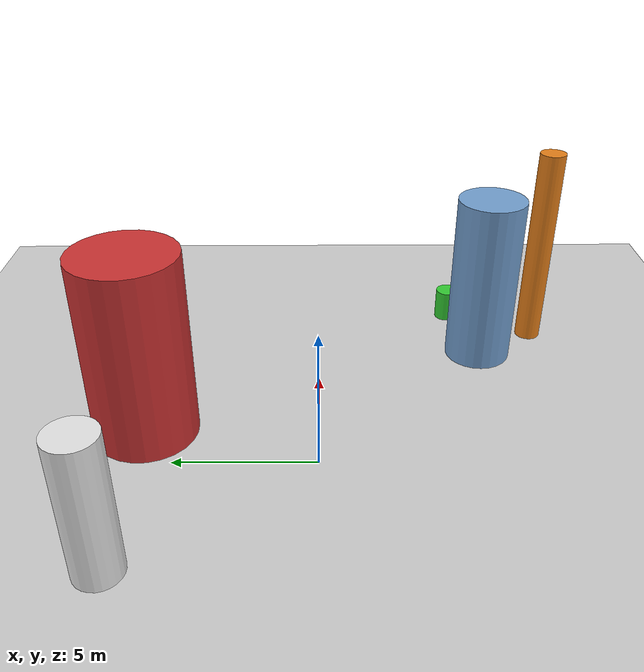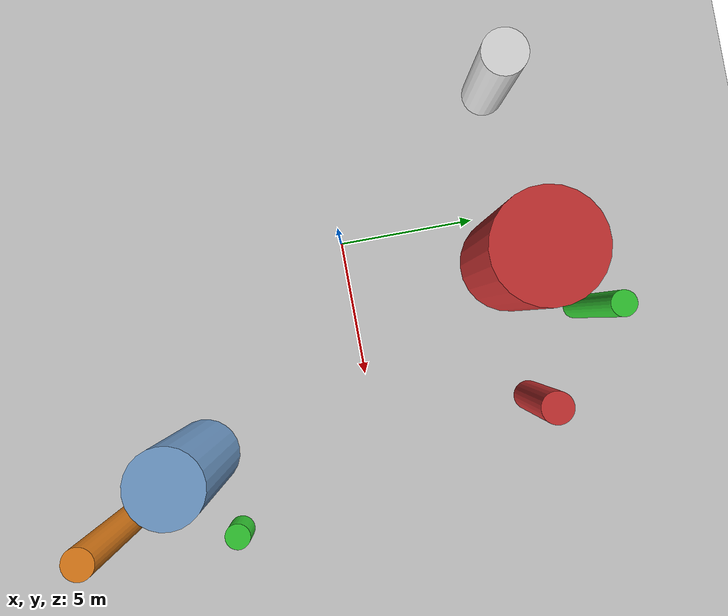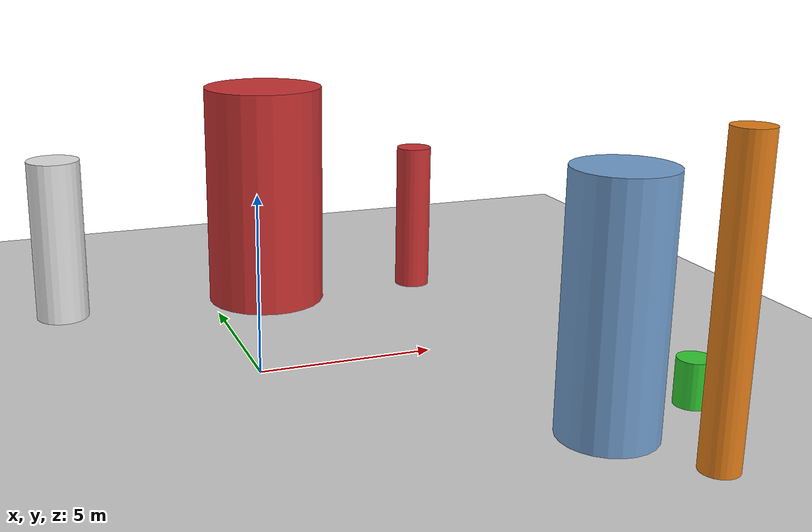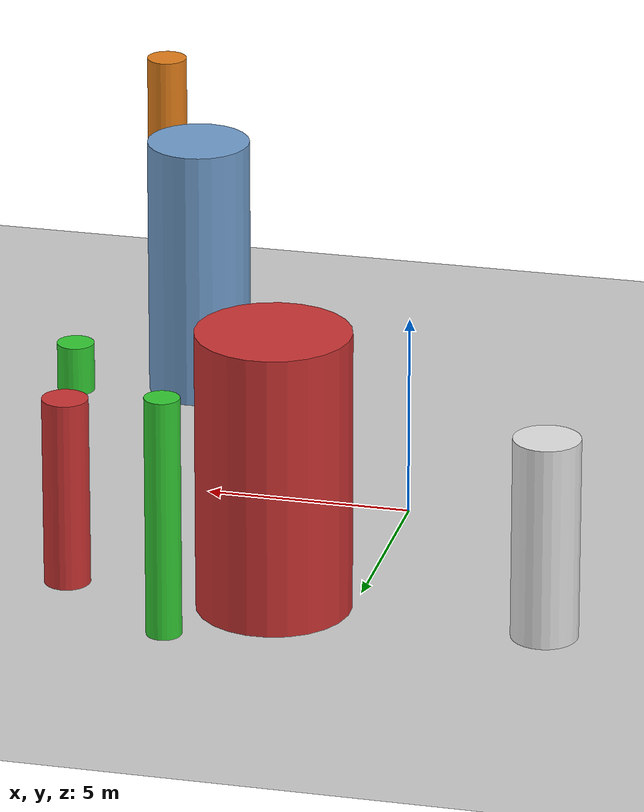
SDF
<?xml version='1.0'?>
<sdf version='1.6'>
  <world name='default'>
    <!-- Sun light -->
    <light name='sun' type='directional'>
      <cast_shadows>1</cast_shadows>
      <pose>0 0 10 0 0 0</pose>
      <diffuse>0.8 0.8 0.8 1</diffuse>
      <specular>0.2 0.2 0.2 1</specular>
      <attenuation>
        <range>1000</range>
        <constant>0.9</constant>
        <linear>0.01</linear>
        <quadratic>0.001</quadratic>
      </attenuation>
      <direction>-0.5 0.1 -0.9</direction>
    </light>

    <!-- Ground plane -->
    <model name='ground_plane'>
      <static>1</static>
      <link name='link'>
        <collision name='collision'>
          <geometry>
            <plane>
              <normal>0 0 1</normal>
              <size>100 100</size>
            </plane>
          </geometry>
          <surface>
            <contact>
              <collide_bitmask>65535</collide_bitmask>
              <ode/>
            </contact>
            <friction>
              <ode>
                <mu>100</mu>
                <mu2>50</mu2>
              </ode>
              <torsional><ode/></torsional>
            </friction>
            <bounce/>
          </surface>
          <max_contacts>10</max_contacts>
        </collision>
        <visual name='visual'>
          <cast_shadows>0</cast_shadows>
          <geometry>
            <plane>
              <normal>0 0 1</normal>
              <size>100 100</size>
            </plane>
          </geometry>
          <material>
            <script>
              <uri>file://media/materials/scripts/gazebo.material</uri>
              <n>Gazebo/Grey</n>
            </script>
          </material>
        </visual>
      </link>
    </model>

    <!-- Environment -->
    <magnetic_field>6e-06 2.3e-05 -4.2e-05</magnetic_field>
    <atmosphere type='adiabatic'/>
    <physics name='default_physics' default='0' type='ode'>
      <gravity>0 0 -9.8</gravity>
      <max_step_size>0.004</max_step_size>
      <real_time_factor>1</real_time_factor>
      <real_time_update_rate>250</real_time_update_rate>
    </physics>
    <scene>
      <ambient>0.4 0.4 0.4 1</ambient>
      <background>0.7 0.7 0.7 1</background>
      <shadows>1</shadows>
    </scene>
    <wind/>
    <spherical_coordinates>
      <surface_model>EARTH_WGS84</surface_model>
      <latitude_deg>0</latitude_deg>
      <longitude_deg>0</longitude_deg>
      <elevation>0</elevation>
      <heading_deg>0</heading_deg>
    </spherical_coordinates>

    <!-- ============ OBSTACLES (7) ============ -->
    <model name='obs_00'>
      <static>1</static>
      <link name='link'>
        <visual name='visual'>
          <geometry>
            <cylinder>
              <radius>0.8006</radius>
              <length>4.9736</length>
            </cylinder>
          </geometry>
          <material>
            <script>
              <n>Gazebo/White</n>
              <uri>file://media/materials/scripts/gazebo.material</uri>
            </script>
            <ambient>0.9 0.9 0.9 1</ambient>
          </material>
        </visual>
        <collision name='collision'>
          <geometry>
            <cylinder>
              <radius>0.8006</radius>
              <length>4.9736</length>
            </cylinder>
          </geometry>
          <max_contacts>10</max_contacts>
          <surface>
            <contact><ode/></contact>
            <bounce/>
            <friction>
              <ode><mu>1</mu><mu2>1</mu2></ode>
              <torsional><ode/></torsional>
            </friction>
          </surface>
        </collision>
      </link>
      <pose>-4.6695 6.3257 2.4868 0 0 2.2100</pose>
    </model>

    <model name='obs_01'>
      <static>1</static>
      <link name='link'>
        <visual name='visual'>
          <geometry>
            <cylinder>
              <radius>0.4982</radius>
              <length>7.9160</length>
            </cylinder>
          </geometry>
          <material>
            <script>
              <n>Gazebo/Orange</n>
              <uri>file://media/materials/scripts/gazebo.material</uri>
            </script>
            <ambient>0.9 0.5 0.1 1</ambient>
          </material>
        </visual>
        <collision name='collision'>
          <geometry>
            <cylinder>
              <radius>0.4982</radius>
              <length>7.9160</length>
            </cylinder>
          </geometry>
          <max_contacts>10</max_contacts>
          <surface>
            <contact><ode/></contact>
            <bounce/>
            <friction>
              <ode><mu>1</mu><mu2>1</mu2></ode>
              <torsional><ode/></torsional>
            </friction>
          </surface>
        </collision>
      </link>
      <pose>8.3452 -8.8818 3.9580 0 0 1.7691</pose>
    </model>

    <model name='obs_02'>
      <static>1</static>
      <link name='link'>
        <visual name='visual'>
          <geometry>
            <cylinder>
              <radius>0.4748</radius>
              <length>1.2657</length>
            </cylinder>
          </geometry>
          <material>
            <script>
              <n>Gazebo/Green</n>
              <uri>file://media/materials/scripts/gazebo.material</uri>
            </script>
            <ambient>0.2 0.8 0.2 1</ambient>
          </material>
        </visual>
        <collision name='collision'>
          <geometry>
            <cylinder>
              <radius>0.4748</radius>
              <length>1.2657</length>
            </cylinder>
          </geometry>
          <max_contacts>10</max_contacts>
          <surface>
            <contact><ode/></contact>
            <bounce/>
            <friction>
              <ode><mu>1</mu><mu2>1</mu2></ode>
              <torsional><ode/></torsional>
            </friction>
          </surface>
        </collision>
      </link>
      <pose>9.9278 -5.6118 0.6329 0 0 1.7031</pose>
    </model>

    <model name='obs_03'>
      <static>1</static>
      <link name='link'>
        <visual name='visual'>
          <geometry>
            <cylinder>
              <radius>0.5548</radius>
              <length>4.6851</length>
            </cylinder>
          </geometry>
          <material>
            <script>
              <n>Gazebo/Red</n>
              <uri>file://media/materials/scripts/gazebo.material</uri>
            </script>
            <ambient>0.8 0.2 0.2 1</ambient>
          </material>
        </visual>
        <collision name='collision'>
          <geometry>
            <cylinder>
              <radius>0.5548</radius>
              <length>4.6851</length>
            </cylinder>
          </geometry>
          <max_contacts>10</max_contacts>
          <surface>
            <contact><ode/></contact>
            <bounce/>
            <friction>
              <ode><mu>1</mu><mu2>1</mu2></ode>
              <torsional><ode/></torsional>
            </friction>
          </surface>
        </collision>
      </link>
      <pose>6.9301 5.9478 2.3426 0 0 0.7308</pose>
    </model>

    <model name='obs_04'>
      <static>1</static>
      <link name='link'>
        <visual name='visual'>
          <geometry>
            <cylinder>
              <radius>1.2861</radius>
              <length>6.6451</length>
            </cylinder>
          </geometry>
          <material>
            <script>
              <n>Gazebo/Blue</n>
              <uri>file://media/materials/scripts/gazebo.material</uri>
            </script>
            <ambient>0.447 0.624 0.812 1</ambient>
          </material>
        </visual>
        <collision name='collision'>
          <geometry>
            <cylinder>
              <radius>1.2861</radius>
              <length>6.6451</length>
            </cylinder>
          </geometry>
          <max_contacts>10</max_contacts>
          <surface>
            <contact><ode/></contact>
            <bounce/>
            <friction>
              <ode><mu>1</mu><mu2>1</mu2></ode>
              <torsional><ode/></torsional>
            </friction>
          </surface>
        </collision>
      </link>
      <pose>6.9044 -6.4780 3.3226 0 0 1.0422</pose>
    </model>

    <model name='obs_05'>
      <static>1</static>
      <link name='link'>
        <visual name='visual'>
          <geometry>
            <cylinder>
              <radius>1.8497</radius>
              <length>6.9100</length>
            </cylinder>
          </geometry>
          <material>
            <script>
              <n>Gazebo/Red</n>
              <uri>file://media/materials/scripts/gazebo.material</uri>
            </script>
            <ambient>0.8 0.2 0.2 1</ambient>
          </material>
        </visual>
        <collision name='collision'>
          <geometry>
            <cylinder>
              <radius>1.8497</radius>
              <length>6.9100</length>
            </cylinder>
          </geometry>
          <max_contacts>10</max_contacts>
          <surface>
            <contact><ode/></contact>
            <bounce/>
            <friction>
              <ode><mu>1</mu><mu2>1</mu2></ode>
              <torsional><ode/></torsional>
            </friction>
          </surface>
        </collision>
      </link>
      <pose>1.8504 6.1242 3.4550 0 0 2.2523</pose>
    </model>

    <model name='obs_06'>
      <static>1</static>
      <link name='link'>
        <visual name='visual'>
          <geometry>
            <cylinder>
              <radius>0.4233</radius>
              <length>5.9329</length>
            </cylinder>
          </geometry>
          <material>
            <script>
              <n>Gazebo/Green</n>
              <uri>file://media/materials/scripts/gazebo.material</uri>
            </script>
            <ambient>0.2 0.8 0.2 1</ambient>
          </material>
        </visual>
        <collision name='collision'>
          <geometry>
            <cylinder>
              <radius>0.4233</radius>
              <length>5.9329</length>
            </cylinder>
          </geometry>
          <max_contacts>10</max_contacts>
          <surface>
            <contact><ode/></contact>
            <bounce/>
            <friction>
              <ode><mu>1</mu><mu2>1</mu2></ode>
              <torsional><ode/></torsional>
            </friction>
          </surface>
        </collision>
      </link>
      <pose>3.9525 8.2796 2.9664 0 0 0.1871</pose>
    </model>

    <!-- GUI camera -->
    <gui fullscreen='0'>
      <camera name='user_camera'>
        <pose>-15 0 18 0 0.85 0.15</pose>
        <view_controller>orbit</view_controller>
        <projection_type>perspective</projection_type>
      </camera>
    </gui>
  </world>
</sdf>
